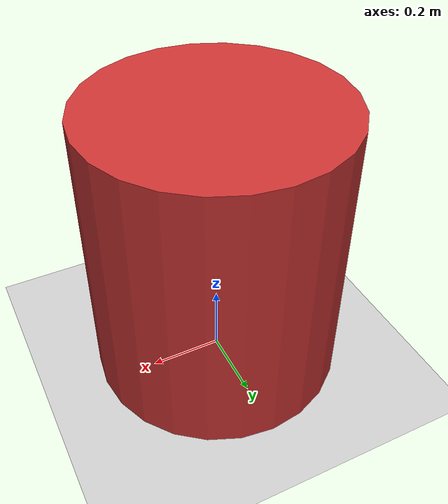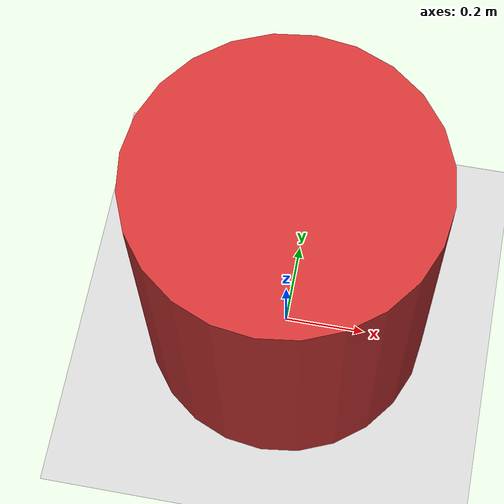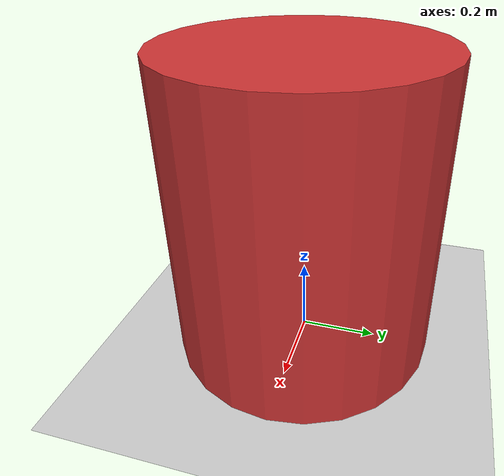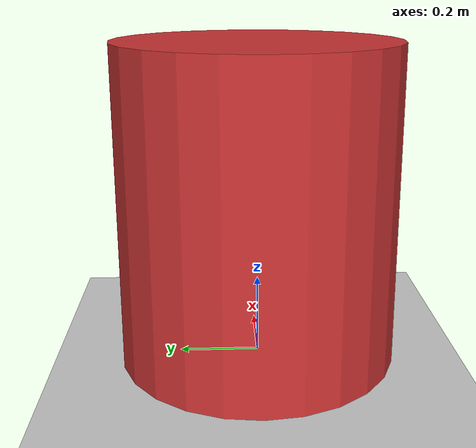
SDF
<?xml version='1.0' encoding='utf-8'?>
<sdf version="1.8">
  <world name="basic">
    <plugin filename="gz-sim-physics-system" name="gz::sim::systems::Physics" />
    <plugin filename="gz-sim-user-commands-system" name="gz::sim::systems::UserCommands" />
    <plugin filename="gz-sim-scene-broadcaster-system" name="gz::sim::systems::SceneBroadcaster" />
    <light name="sun" type="directional">
      <cast_shadows>true</cast_shadows>
      <pose>0 0 10 0 0 0</pose>
      <diffuse>1 1 1 1</diffuse>
      <specular>0.2 0.2 0.2 1</specular>
      <direction>-0.5 0.1 -1</direction>
    </light>
    <model name="ground_plane">
      <static>true</static>
      <link name="link">
        <collision name="collision">
          <geometry>
            <plane>
              <normal>0 0 1</normal>
              <size>200 200</size>
            </plane>
          </geometry>
        </collision>
        <visual name="visual">
          <geometry>
            <plane>
              <normal>0 0 1</normal>
              <size>200 200</size>
            </plane>
          </geometry>
        </visual>
      </link>
    </model>
    <model name="center_cylinder">
      <static>true</static>
      <pose>0 0 0.4 0 0 0</pose>
      <link name="link">
        <pose>0 0 0 0 0 0</pose>
        <collision name="collision">
          <geometry>
            <cylinder>
              <radius>0.35</radius>
              <length>0.8</length>
            </cylinder>
          </geometry>
        </collision>
        <visual name="visual">
          <geometry>
            <cylinder>
              <radius>0.35</radius>
              <length>0.8</length>
            </cylinder>
          </geometry>
          <material>
            <ambient>0.8 0.2 0.2 1</ambient>
            <diffuse>0.8 0.2 0.2 1</diffuse>
          </material>
        </visual>
      </link>
    </model>
  </world>
</sdf>
